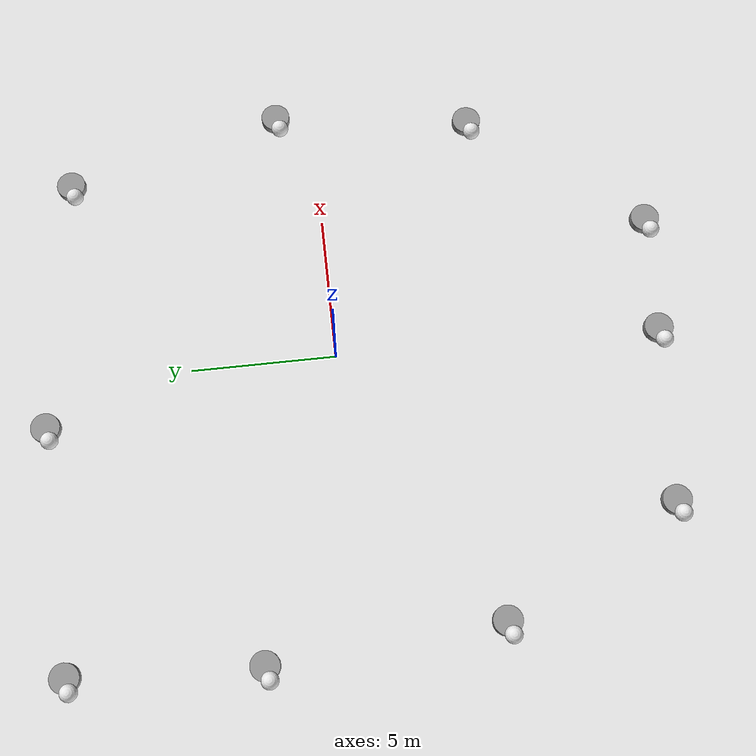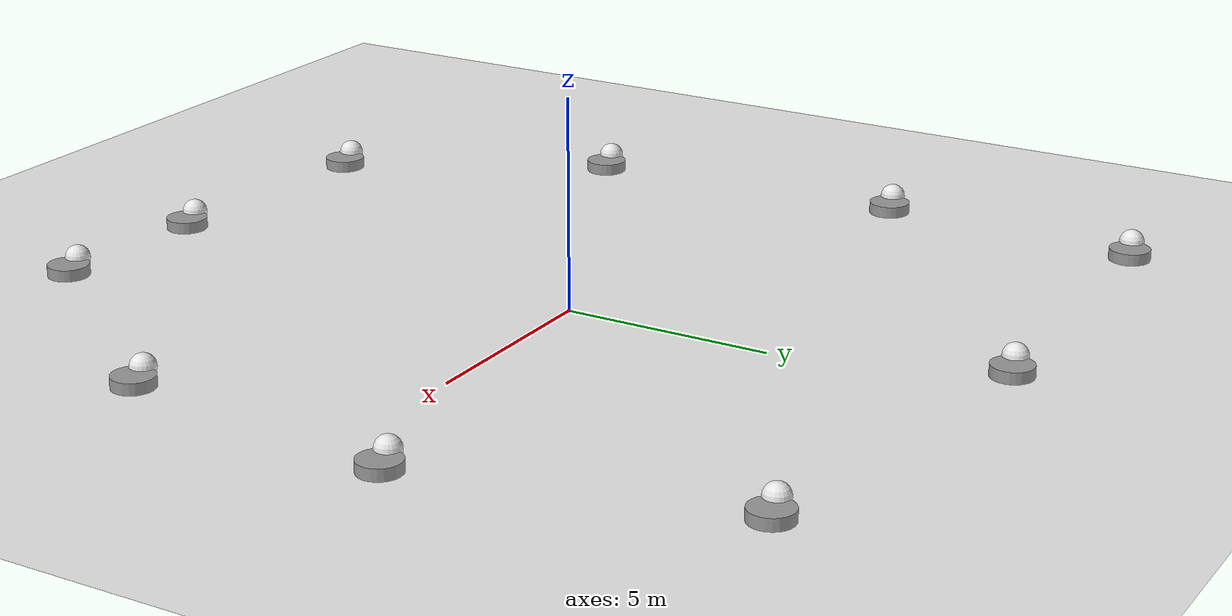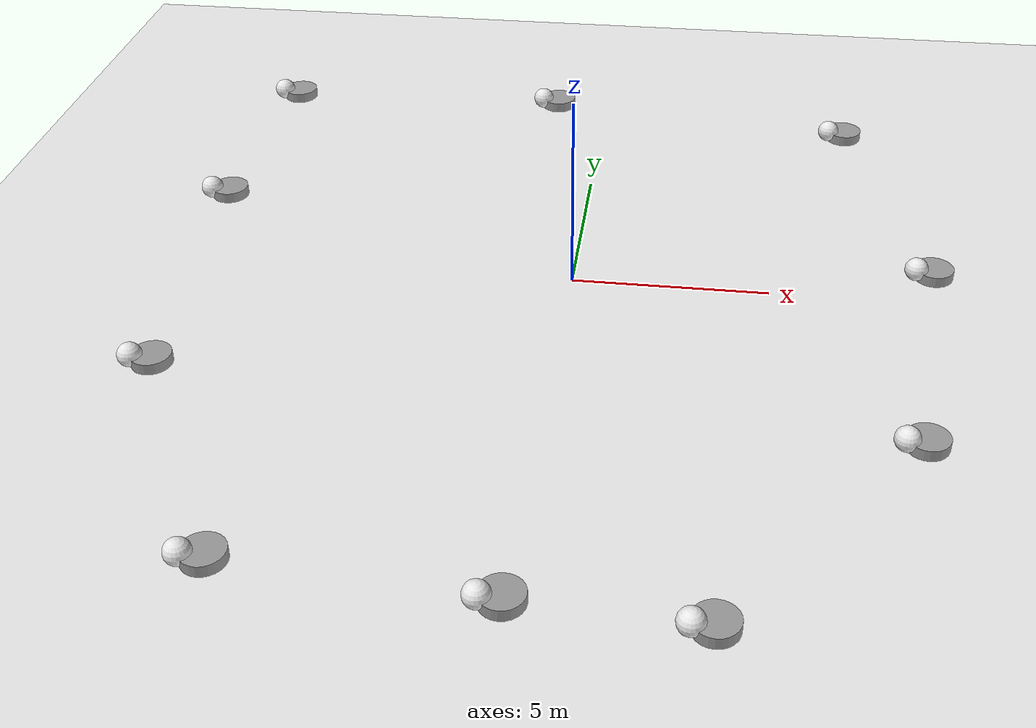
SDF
<sdf version="1.7">
 <world name="default">
  <light name="sun" type="directional">
   <pose>0 0 10 0 -0 0</pose>
   <diffuse>0.8 0.8 0.8 1</diffuse>
   <specular>0.2 0.2 0.2 1</specular>
   <attenuation>
    <range>1000</range>
    <constant>0.9</constant>
    <linear>0.01</linear>
    <quadratic>0.001</quadratic>
   </attenuation>
   <direction>-0.5 0.1 -0.9</direction>
   <spot><inner_angle>0</inner_angle><outer_angle>0</outer_angle><falloff>0</falloff></spot>
  </light>
  <model name="ground_plane">
   <static>1</static>
   <link name="link">
    <collision name="collision">
     <geometry><plane><normal>0 0 1</normal><size>100 100</size></plane></geometry>
     <surface>
      <contact><collide_bitmask>65535</collide_bitmask></contact>
      <friction><ode><mu>100</mu><mu2>50</mu2></ode></friction>
     </surface>
    </collision>
    <visual name="visual">
     <cast_shadows>0</cast_shadows>
     <geometry><plane><normal>0 0 1</normal><size>100 100</size></plane></geometry>
     <material>
      <script><uri>file://media/materials/scripts/gazebo.material</uri><name>Gazebo/White</name></script>
     </material>
    </visual>
   </link>
  </model>
  <gravity>0 0 -9.8</gravity>
  <magnetic_field>6e-06 2.3e-05 -4.2e-05</magnetic_field>
  <atmosphere type="adiabatic"/>
  <physics type="ode">
   <max_step_size>0.001</max_step_size>
   <real_time_factor>1</real_time_factor>
   <real_time_update_rate>1000</real_time_update_rate>
  </physics>
  <scene><ambient>0.4 0.4 0.4 1</ambient><background>0.7 0.7 0.7 1</background><shadows>1</shadows></scene>
  <spherical_coordinates>
   <surface_model>EARTH_WGS84</surface_model>
   <latitude_deg>0</latitude_deg>
   <longitude_deg>0</longitude_deg>
   <elevation>0</elevation>
   <heading_deg>0</heading_deg>
  </spherical_coordinates>
  <model name="model6.1">
   <link name="link_0">
    <inertial>
     <mass>1</mass>
     <inertia><ixx>0.145833</ixx><ixy>0</ixy><ixz>0</ixz><iyy>0.145833</iyy><iyz>0</iyz><izz>0.125</izz></inertia>
    </inertial>
    <pose>0.23341 0.06182 -0.25 0 -0 0</pose>
    <visual name="visual">
     <geometry><cylinder><radius>0.5</radius><length>1</length></cylinder></geometry>
     <material>
      <lighting>1</lighting>
      <script><uri>file://media/materials/scripts/gazebo.material</uri><name>Gazebo/Grey</name></script>
      <shader type="pixel"><normal_map>__default__</normal_map></shader>
      <emissive>0 0 0 1</emissive>
      <ambient>0.3 0.3 0.3 1</ambient>
      <diffuse>0.7 0.7 0.7 1</diffuse>
      <specular>0.01 0.01 0.01 1</specular>
     </material>
    </visual>
    <collision name="collision">
     <geometry><cylinder><radius>0.5</radius><length>1</length></cylinder></geometry>
     <surface>
      <friction>
       <ode><mu>1</mu><mu2>1</mu2><fdir1>0 0 0</fdir1><slip1>0</slip1><slip2>0</slip2></ode>
       <torsional>
        <coefficient>1</coefficient>
        <patch_radius>0</patch_radius>
        <surface_radius>0</surface_radius>
        <use_patch_radius>1</use_patch_radius>
        <ode><slip>0</slip></ode>
       </torsional>
      </friction>
      <bounce><restitution_coefficient>0</restitution_coefficient><threshold>1e+06</threshold></bounce>
      <contact>
       <collide_without_contact>0</collide_without_contact>
       <collide_without_contact_bitmask>1</collide_without_contact_bitmask>
       <collide_bitmask>1</collide_bitmask>
       <ode>
        <soft_cfm>0</soft_cfm>
        <soft_erp>0.2</soft_erp>
        <kp>1e+13</kp>
        <kd>1</kd>
        <max_vel>0.01</max_vel>
        <min_depth>0</min_depth>
       </ode>
       <bullet>
        <split_impulse>1</split_impulse>
        <split_impulse_penetration_threshold>-0.01</split_impulse_penetration_threshold>
        <soft_cfm>0</soft_cfm>
        <soft_erp>0.2</soft_erp>
        <kp>1e+13</kp>
        <kd>1</kd>
       </bullet>
      </contact>
     </surface>
    </collision>
   </link>
   <link name="link_1">
    <inertial>
     <mass>1</mass>
     <inertia><ixx>0.1</ixx><ixy>0</ixy><ixz>0</ixz><iyy>0.1</iyy><iyz>0</iyz><izz>0.1</izz></inertia>
    </inertial>
    <pose>-0.23341 -0.06182 0.25 0 -0 0</pose>
    <visual name="visual">
     <geometry><sphere><radius>0.3</radius></sphere></geometry>
     <material>
      <lighting>1</lighting>
      <script><uri>file://media/materials/scripts/gazebo.material</uri><name>Gazebo/White</name></script>
      <shader type="pixel"><normal_map>__default__</normal_map></shader>
      <ambient>0.3 0.3 0.3 1</ambient>
      <diffuse>0.7 0.7 0.7 1</diffuse>
      <specular>0.01 0.01 0.01 1</specular>
      <emissive>0 0 0 1</emissive>
     </material>
    </visual>
    <collision name="collision">
     <geometry><sphere><radius>0.3</radius></sphere></geometry>
     <surface>
      <friction>
       <ode><mu>1</mu><mu2>1</mu2><fdir1>0 0 0</fdir1><slip1>0</slip1><slip2>0</slip2></ode>
       <torsional>
        <coefficient>1</coefficient>
        <patch_radius>0</patch_radius>
        <surface_radius>0</surface_radius>
        <use_patch_radius>1</use_patch_radius>
        <ode><slip>0</slip></ode>
       </torsional>
      </friction>
      <bounce><restitution_coefficient>0</restitution_coefficient><threshold>1e+06</threshold></bounce>
      <contact>
       <collide_without_contact>0</collide_without_contact>
       <collide_without_contact_bitmask>1</collide_without_contact_bitmask>
       <collide_bitmask>1</collide_bitmask>
       <ode>
        <soft_cfm>0</soft_cfm>
        <soft_erp>0.2</soft_erp>
        <kp>1e+13</kp>
        <kd>1</kd>
        <max_vel>0.01</max_vel>
        <min_depth>0</min_depth>
       </ode>
       <bullet>
        <split_impulse>1</split_impulse>
        <split_impulse_penetration_threshold>-0.01</split_impulse_penetration_threshold>
        <soft_cfm>0</soft_cfm>
        <soft_erp>0.2</soft_erp>
        <kp>1e+13</kp>
        <kd>1</kd>
       </bullet>
      </contact>
     </surface>
    </collision>
   </link>
   <joint name="link_0_JOINT_0" type="revolute">
    <parent>link_0</parent>
    <child>link_1</child>
    <axis>
     <xyz>0 0 2</xyz>
     <limit>
      <lower>-1.79769e+308</lower>
      <upper>1.79769e+308</upper>
      <effort>-1</effort>
      <velocity>-1</velocity>
     </limit>
     <dynamics>
      <spring_reference>0</spring_reference>
      <spring_stiffness>0</spring_stiffness>
      <damping>0</damping>
     </dynamics>
    </axis>
    <physics>
     <ode><limit><cfm>0</cfm><erp>0.2</erp></limit><suspension><cfm>0</cfm><erp>0.2</erp></suspension></ode>
    </physics>
   </joint>
   <static>0</static>
   <pose>-10.0649 9.6678 0 0 -0 0</pose>
  </model>
  <model name="model6.1_0">
   <link name="link_0">
    <inertial>
     <mass>1</mass>
     <inertia><ixx>0.145833</ixx><ixy>0</ixy><ixz>0</ixz><iyy>0.145833</iyy><iyz>0</iyz><izz>0.125</izz></inertia>
    </inertial>
    <pose>0.23341 0.06182 -0.25 0 -0 0</pose>
    <visual name="visual">
     <geometry><cylinder><radius>0.5</radius><length>1</length></cylinder></geometry>
     <material>
      <lighting>1</lighting>
      <script><uri>file://media/materials/scripts/gazebo.material</uri><name>Gazebo/Grey</name></script>
      <shader type="pixel"><normal_map>__default__</normal_map></shader>
      <emissive>0 0 0 1</emissive>
      <ambient>0.3 0.3 0.3 1</ambient>
      <diffuse>0.7 0.7 0.7 1</diffuse>
      <specular>0.01 0.01 0.01 1</specular>
     </material>
    </visual>
    <collision name="collision">
     <geometry><cylinder><radius>0.5</radius><length>1</length></cylinder></geometry>
     <surface>
      <friction>
       <ode><mu>1</mu><mu2>1</mu2><fdir1>0 0 0</fdir1><slip1>0</slip1><slip2>0</slip2></ode>
       <torsional>
        <coefficient>1</coefficient>
        <patch_radius>0</patch_radius>
        <surface_radius>0</surface_radius>
        <use_patch_radius>1</use_patch_radius>
        <ode><slip>0</slip></ode>
       </torsional>
      </friction>
      <bounce><restitution_coefficient>0</restitution_coefficient><threshold>1e+06</threshold></bounce>
      <contact>
       <collide_without_contact>0</collide_without_contact>
       <collide_without_contact_bitmask>1</collide_without_contact_bitmask>
       <collide_bitmask>1</collide_bitmask>
       <ode>
        <soft_cfm>0</soft_cfm>
        <soft_erp>0.2</soft_erp>
        <kp>1e+13</kp>
        <kd>1</kd>
        <max_vel>0.01</max_vel>
        <min_depth>0</min_depth>
       </ode>
       <bullet>
        <split_impulse>1</split_impulse>
        <split_impulse_penetration_threshold>-0.01</split_impulse_penetration_threshold>
        <soft_cfm>0</soft_cfm>
        <soft_erp>0.2</soft_erp>
        <kp>1e+13</kp>
        <kd>1</kd>
       </bullet>
      </contact>
     </surface>
    </collision>
   </link>
   <link name="link_1">
    <inertial>
     <mass>1</mass>
     <inertia><ixx>0.1</ixx><ixy>0</ixy><ixz>0</ixz><iyy>0.1</iyy><iyz>0</iyz><izz>0.1</izz></inertia>
    </inertial>
    <pose>-0.23341 -0.06182 0.25 0 -0 0</pose>
    <visual name="visual">
     <geometry><sphere><radius>0.3</radius></sphere></geometry>
     <material>
      <lighting>1</lighting>
      <script><uri>file://media/materials/scripts/gazebo.material</uri><name>Gazebo/White</name></script>
      <shader type="pixel"><normal_map>__default__</normal_map></shader>
      <ambient>0.3 0.3 0.3 1</ambient>
      <diffuse>0.7 0.7 0.7 1</diffuse>
      <specular>0.01 0.01 0.01 1</specular>
      <emissive>0 0 0 1</emissive>
     </material>
    </visual>
    <collision name="collision">
     <geometry><sphere><radius>0.3</radius></sphere></geometry>
     <surface>
      <friction>
       <ode><mu>1</mu><mu2>1</mu2><fdir1>0 0 0</fdir1><slip1>0</slip1><slip2>0</slip2></ode>
       <torsional>
        <coefficient>1</coefficient>
        <patch_radius>0</patch_radius>
        <surface_radius>0</surface_radius>
        <use_patch_radius>1</use_patch_radius>
        <ode><slip>0</slip></ode>
       </torsional>
      </friction>
      <bounce><restitution_coefficient>0</restitution_coefficient><threshold>1e+06</threshold></bounce>
      <contact>
       <collide_without_contact>0</collide_without_contact>
       <collide_without_contact_bitmask>1</collide_without_contact_bitmask>
       <collide_bitmask>1</collide_bitmask>
       <ode>
        <soft_cfm>0</soft_cfm>
        <soft_erp>0.2</soft_erp>
        <kp>1e+13</kp>
        <kd>1</kd>
        <max_vel>0.01</max_vel>
        <min_depth>0</min_depth>
       </ode>
       <bullet>
        <split_impulse>1</split_impulse>
        <split_impulse_penetration_threshold>-0.01</split_impulse_penetration_threshold>
        <soft_cfm>0</soft_cfm>
        <soft_erp>0.2</soft_erp>
        <kp>1e+13</kp>
        <kd>1</kd>
       </bullet>
      </contact>
     </surface>
    </collision>
   </link>
   <joint name="link_0_JOINT_0" type="revolute">
    <parent>link_0</parent>
    <child>link_1</child>
    <axis>
     <xyz>0 0 2</xyz>
     <limit>
      <lower>-1.79769e+308</lower>
      <upper>1.79769e+308</upper>
      <effort>-1</effort>
      <velocity>-1</velocity>
     </limit>
     <dynamics>
      <spring_reference>0</spring_reference>
      <spring_stiffness>0</spring_stiffness>
      <damping>0</damping>
     </dynamics>
    </axis>
    <physics>
     <ode><limit><cfm>0</cfm><erp>0.2</erp></limit><suspension><cfm>0</cfm><erp>0.2</erp></suspension></ode>
    </physics>
   </joint>
   <static>0</static>
   <pose>-10.3536 3.24933 0 0 -0 0</pose>
  </model>
  <model name="model6.1_1">
   <link name="link_0">
    <inertial>
     <mass>1</mass>
     <inertia><ixx>0.145833</ixx><ixy>0</ixy><ixz>0</ixz><iyy>0.145833</iyy><iyz>0</iyz><izz>0.125</izz></inertia>
    </inertial>
    <pose>0.23341 0.06182 -0.25 0 -0 0</pose>
    <visual name="visual">
     <geometry><cylinder><radius>0.5</radius><length>1</length></cylinder></geometry>
     <material>
      <lighting>1</lighting>
      <script><uri>file://media/materials/scripts/gazebo.material</uri><name>Gazebo/Grey</name></script>
      <shader type="pixel"><normal_map>__default__</normal_map></shader>
      <emissive>0 0 0 1</emissive>
      <ambient>0.3 0.3 0.3 1</ambient>
      <diffuse>0.7 0.7 0.7 1</diffuse>
      <specular>0.01 0.01 0.01 1</specular>
     </material>
    </visual>
    <collision name="collision">
     <geometry><cylinder><radius>0.5</radius><length>1</length></cylinder></geometry>
     <surface>
      <friction>
       <ode><mu>1</mu><mu2>1</mu2><fdir1>0 0 0</fdir1><slip1>0</slip1><slip2>0</slip2></ode>
       <torsional>
        <coefficient>1</coefficient>
        <patch_radius>0</patch_radius>
        <surface_radius>0</surface_radius>
        <use_patch_radius>1</use_patch_radius>
        <ode><slip>0</slip></ode>
       </torsional>
      </friction>
      <bounce><restitution_coefficient>0</restitution_coefficient><threshold>1e+06</threshold></bounce>
      <contact>
       <collide_without_contact>0</collide_without_contact>
       <collide_without_contact_bitmask>1</collide_without_contact_bitmask>
       <collide_bitmask>1</collide_bitmask>
       <ode>
        <soft_cfm>0</soft_cfm>
        <soft_erp>0.2</soft_erp>
        <kp>1e+13</kp>
        <kd>1</kd>
        <max_vel>0.01</max_vel>
        <min_depth>0</min_depth>
       </ode>
       <bullet>
        <split_impulse>1</split_impulse>
        <split_impulse_penetration_threshold>-0.01</split_impulse_penetration_threshold>
        <soft_cfm>0</soft_cfm>
        <soft_erp>0.2</soft_erp>
        <kp>1e+13</kp>
        <kd>1</kd>
       </bullet>
      </contact>
     </surface>
    </collision>
   </link>
   <link name="link_1">
    <inertial>
     <mass>1</mass>
     <inertia><ixx>0.1</ixx><ixy>0</ixy><ixz>0</ixz><iyy>0.1</iyy><iyz>0</iyz><izz>0.1</izz></inertia>
    </inertial>
    <pose>-0.23341 -0.06182 0.25 0 -0 0</pose>
    <visual name="visual">
     <geometry><sphere><radius>0.3</radius></sphere></geometry>
     <material>
      <lighting>1</lighting>
      <script><uri>file://media/materials/scripts/gazebo.material</uri><name>Gazebo/White</name></script>
      <shader type="pixel"><normal_map>__default__</normal_map></shader>
      <ambient>0.3 0.3 0.3 1</ambient>
      <diffuse>0.7 0.7 0.7 1</diffuse>
      <specular>0.01 0.01 0.01 1</specular>
      <emissive>0 0 0 1</emissive>
     </material>
    </visual>
    <collision name="collision">
     <geometry><sphere><radius>0.3</radius></sphere></geometry>
     <surface>
      <friction>
       <ode><mu>1</mu><mu2>1</mu2><fdir1>0 0 0</fdir1><slip1>0</slip1><slip2>0</slip2></ode>
       <torsional>
        <coefficient>1</coefficient>
        <patch_radius>0</patch_radius>
        <surface_radius>0</surface_radius>
        <use_patch_radius>1</use_patch_radius>
        <ode><slip>0</slip></ode>
       </torsional>
      </friction>
      <bounce><restitution_coefficient>0</restitution_coefficient><threshold>1e+06</threshold></bounce>
      <contact>
       <collide_without_contact>0</collide_without_contact>
       <collide_without_contact_bitmask>1</collide_without_contact_bitmask>
       <collide_bitmask>1</collide_bitmask>
       <ode>
        <soft_cfm>0</soft_cfm>
        <soft_erp>0.2</soft_erp>
        <kp>1e+13</kp>
        <kd>1</kd>
        <max_vel>0.01</max_vel>
        <min_depth>0</min_depth>
       </ode>
       <bullet>
        <split_impulse>1</split_impulse>
        <split_impulse_penetration_threshold>-0.01</split_impulse_penetration_threshold>
        <soft_cfm>0</soft_cfm>
        <soft_erp>0.2</soft_erp>
        <kp>1e+13</kp>
        <kd>1</kd>
       </bullet>
      </contact>
     </surface>
    </collision>
   </link>
   <joint name="link_0_JOINT_0" type="revolute">
    <parent>link_0</parent>
    <child>link_1</child>
    <axis>
     <xyz>0 0 2</xyz>
     <limit>
      <lower>-1.79769e+308</lower>
      <upper>1.79769e+308</upper>
      <effort>-1</effort>
      <velocity>-1</velocity>
     </limit>
     <dynamics>
      <spring_reference>0</spring_reference>
      <spring_stiffness>0</spring_stiffness>
      <damping>0</damping>
     </dynamics>
    </axis>
    <physics>
     <ode><limit><cfm>0</cfm><erp>0.2</erp></limit><suspension><cfm>0</cfm><erp>0.2</erp></suspension></ode>
    </physics>
   </joint>
   <static>0</static>
   <pose>-9.74411 -4.69989 0 0 -0 0</pose>
  </model>
  <model name="model6.1_2">
   <link name="link_0">
    <inertial>
     <mass>1</mass>
     <inertia><ixx>0.145833</ixx><ixy>0</ixy><ixz>0</ixz><iyy>0.145833</iyy><iyz>0</iyz><izz>0.125</izz></inertia>
    </inertial>
    <pose>0.23341 0.06182 -0.25 0 -0 0</pose>
    <visual name="visual">
     <geometry><cylinder><radius>0.5</radius><length>1</length></cylinder></geometry>
     <material>
      <lighting>1</lighting>
      <script><uri>file://media/materials/scripts/gazebo.material</uri><name>Gazebo/Grey</name></script>
      <shader type="pixel"><normal_map>__default__</normal_map></shader>
      <emissive>0 0 0 1</emissive>
      <ambient>0.3 0.3 0.3 1</ambient>
      <diffuse>0.7 0.7 0.7 1</diffuse>
      <specular>0.01 0.01 0.01 1</specular>
     </material>
    </visual>
    <collision name="collision">
     <geometry><cylinder><radius>0.5</radius><length>1</length></cylinder></geometry>
     <surface>
      <friction>
       <ode><mu>1</mu><mu2>1</mu2><fdir1>0 0 0</fdir1><slip1>0</slip1><slip2>0</slip2></ode>
       <torsional>
        <coefficient>1</coefficient>
        <patch_radius>0</patch_radius>
        <surface_radius>0</surface_radius>
        <use_patch_radius>1</use_patch_radius>
        <ode><slip>0</slip></ode>
       </torsional>
      </friction>
      <bounce><restitution_coefficient>0</restitution_coefficient><threshold>1e+06</threshold></bounce>
      <contact>
       <collide_without_contact>0</collide_without_contact>
       <collide_without_contact_bitmask>1</collide_without_contact_bitmask>
       <collide_bitmask>1</collide_bitmask>
       <ode>
        <soft_cfm>0</soft_cfm>
        <soft_erp>0.2</soft_erp>
        <kp>1e+13</kp>
        <kd>1</kd>
        <max_vel>0.01</max_vel>
        <min_depth>0</min_depth>
       </ode>
       <bullet>
        <split_impulse>1</split_impulse>
        <split_impulse_penetration_threshold>-0.01</split_impulse_penetration_threshold>
        <soft_cfm>0</soft_cfm>
        <soft_erp>0.2</soft_erp>
        <kp>1e+13</kp>
        <kd>1</kd>
       </bullet>
      </contact>
     </surface>
    </collision>
   </link>
   <link name="link_1">
    <inertial>
     <mass>1</mass>
     <inertia><ixx>0.1</ixx><ixy>0</ixy><ixz>0</ixz><iyy>0.1</iyy><iyz>0</iyz><izz>0.1</izz></inertia>
    </inertial>
    <pose>-0.23341 -0.06182 0.25 0 -0 0</pose>
    <visual name="visual">
     <geometry><sphere><radius>0.3</radius></sphere></geometry>
     <material>
      <lighting>1</lighting>
      <script><uri>file://media/materials/scripts/gazebo.material</uri><name>Gazebo/White</name></script>
      <shader type="pixel"><normal_map>__default__</normal_map></shader>
      <ambient>0.3 0.3 0.3 1</ambient>
      <diffuse>0.7 0.7 0.7 1</diffuse>
      <specular>0.01 0.01 0.01 1</specular>
      <emissive>0 0 0 1</emissive>
     </material>
    </visual>
    <collision name="collision">
     <geometry><sphere><radius>0.3</radius></sphere></geometry>
     <surface>
      <friction>
       <ode><mu>1</mu><mu2>1</mu2><fdir1>0 0 0</fdir1><slip1>0</slip1><slip2>0</slip2></ode>
       <torsional>
        <coefficient>1</coefficient>
        <patch_radius>0</patch_radius>
        <surface_radius>0</surface_radius>
        <use_patch_radius>1</use_patch_radius>
        <ode><slip>0</slip></ode>
       </torsional>
      </friction>
      <bounce><restitution_coefficient>0</restitution_coefficient><threshold>1e+06</threshold></bounce>
      <contact>
       <collide_without_contact>0</collide_without_contact>
       <collide_without_contact_bitmask>1</collide_without_contact_bitmask>
       <collide_bitmask>1</collide_bitmask>
       <ode>
        <soft_cfm>0</soft_cfm>
        <soft_erp>0.2</soft_erp>
        <kp>1e+13</kp>
        <kd>1</kd>
        <max_vel>0.01</max_vel>
        <min_depth>0</min_depth>
       </ode>
       <bullet>
        <split_impulse>1</split_impulse>
        <split_impulse_penetration_threshold>-0.01</split_impulse_penetration_threshold>
        <soft_cfm>0</soft_cfm>
        <soft_erp>0.2</soft_erp>
        <kp>1e+13</kp>
        <kd>1</kd>
       </bullet>
      </contact>
     </surface>
    </collision>
   </link>
   <joint name="link_0_JOINT_0" type="revolute">
    <parent>link_0</parent>
    <child>link_1</child>
    <axis>
     <xyz>0 0 2</xyz>
     <limit>
      <lower>-1.79769e+308</lower>
      <upper>1.79769e+308</upper>
      <effort>-1</effort>
      <velocity>-1</velocity>
     </limit>
     <dynamics>
      <spring_reference>0</spring_reference>
      <spring_stiffness>0</spring_stiffness>
      <damping>0</damping>
     </dynamics>
    </axis>
    <physics>
     <ode><limit><cfm>0</cfm><erp>0.2</erp></limit><suspension><cfm>0</cfm><erp>0.2</erp></suspension></ode>
    </physics>
   </joint>
   <static>0</static>
   <pose>-6.40719 -10.8509 0 0 -0 0</pose>
  </model>
  <model name="model6.1_3">
   <link name="link_0">
    <inertial>
     <mass>1</mass>
     <inertia><ixx>0.145833</ixx><ixy>0</ixy><ixz>0</ixz><iyy>0.145833</iyy><iyz>0</iyz><izz>0.125</izz></inertia>
    </inertial>
    <pose>0.23341 0.06182 -0.25 0 -0 0</pose>
    <visual name="visual">
     <geometry><cylinder><radius>0.5</radius><length>1</length></cylinder></geometry>
     <material>
      <lighting>1</lighting>
      <script><uri>file://media/materials/scripts/gazebo.material</uri><name>Gazebo/Grey</name></script>
      <shader type="pixel"><normal_map>__default__</normal_map></shader>
      <emissive>0 0 0 1</emissive>
      <ambient>0.3 0.3 0.3 1</ambient>
      <diffuse>0.7 0.7 0.7 1</diffuse>
      <specular>0.01 0.01 0.01 1</specular>
     </material>
    </visual>
    <collision name="collision">
     <geometry><cylinder><radius>0.5</radius><length>1</length></cylinder></geometry>
     <surface>
      <friction>
       <ode><mu>1</mu><mu2>1</mu2><fdir1>0 0 0</fdir1><slip1>0</slip1><slip2>0</slip2></ode>
       <torsional>
        <coefficient>1</coefficient>
        <patch_radius>0</patch_radius>
        <surface_radius>0</surface_radius>
        <use_patch_radius>1</use_patch_radius>
        <ode><slip>0</slip></ode>
       </torsional>
      </friction>
      <bounce><restitution_coefficient>0</restitution_coefficient><threshold>1e+06</threshold></bounce>
      <contact>
       <collide_without_contact>0</collide_without_contact>
       <collide_without_contact_bitmask>1</collide_without_contact_bitmask>
       <collide_bitmask>1</collide_bitmask>
       <ode>
        <soft_cfm>0</soft_cfm>
        <soft_erp>0.2</soft_erp>
        <kp>1e+13</kp>
        <kd>1</kd>
        <max_vel>0.01</max_vel>
        <min_depth>0</min_depth>
       </ode>
       <bullet>
        <split_impulse>1</split_impulse>
        <split_impulse_penetration_threshold>-0.01</split_impulse_penetration_threshold>
        <soft_cfm>0</soft_cfm>
        <soft_erp>0.2</soft_erp>
        <kp>1e+13</kp>
        <kd>1</kd>
       </bullet>
      </contact>
     </surface>
    </collision>
   </link>
   <link name="link_1">
    <inertial>
     <mass>1</mass>
     <inertia><ixx>0.1</ixx><ixy>0</ixy><ixz>0</ixz><iyy>0.1</iyy><iyz>0</iyz><izz>0.1</izz></inertia>
    </inertial>
    <pose>-0.23341 -0.06182 0.25 0 -0 0</pose>
    <visual name="visual">
     <geometry><sphere><radius>0.3</radius></sphere></geometry>
     <material>
      <lighting>1</lighting>
      <script><uri>file://media/materials/scripts/gazebo.material</uri><name>Gazebo/White</name></script>
      <shader type="pixel"><normal_map>__default__</normal_map></shader>
      <ambient>0.3 0.3 0.3 1</ambient>
      <diffuse>0.7 0.7 0.7 1</diffuse>
      <specular>0.01 0.01 0.01 1</specular>
      <emissive>0 0 0 1</emissive>
     </material>
    </visual>
    <collision name="collision">
     <geometry><sphere><radius>0.3</radius></sphere></geometry>
     <surface>
      <friction>
       <ode><mu>1</mu><mu2>1</mu2><fdir1>0 0 0</fdir1><slip1>0</slip1><slip2>0</slip2></ode>
       <torsional>
        <coefficient>1</coefficient>
        <patch_radius>0</patch_radius>
        <surface_radius>0</surface_radius>
        <use_patch_radius>1</use_patch_radius>
        <ode><slip>0</slip></ode>
       </torsional>
      </friction>
      <bounce><restitution_coefficient>0</restitution_coefficient><threshold>1e+06</threshold></bounce>
      <contact>
       <collide_without_contact>0</collide_without_contact>
       <collide_without_contact_bitmask>1</collide_without_contact_bitmask>
       <collide_bitmask>1</collide_bitmask>
       <ode>
        <soft_cfm>0</soft_cfm>
        <soft_erp>0.2</soft_erp>
        <kp>1e+13</kp>
        <kd>1</kd>
        <max_vel>0.01</max_vel>
        <min_depth>0</min_depth>
       </ode>
       <bullet>
        <split_impulse>1</split_impulse>
        <split_impulse_penetration_threshold>-0.01</split_impulse_penetration_threshold>
        <soft_cfm>0</soft_cfm>
        <soft_erp>0.2</soft_erp>
        <kp>1e+13</kp>
        <kd>1</kd>
       </bullet>
      </contact>
     </surface>
    </collision>
   </link>
   <joint name="link_0_JOINT_0" type="revolute">
    <parent>link_0</parent>
    <child>link_1</child>
    <axis>
     <xyz>0 0 2</xyz>
     <limit>
      <lower>-1.79769e+308</lower>
      <upper>1.79769e+308</upper>
      <effort>-1</effort>
      <velocity>-1</velocity>
     </limit>
     <dynamics>
      <spring_reference>0</spring_reference>
      <spring_stiffness>0</spring_stiffness>
      <damping>0</damping>
     </dynamics>
    </axis>
    <physics>
     <ode><limit><cfm>0</cfm><erp>0.2</erp></limit><suspension><cfm>0</cfm><erp>0.2</erp></suspension></ode>
    </physics>
   </joint>
   <static>0</static>
   <pose>-0.378354 -11.2786 0 0 -0 0</pose>
  </model>
  <model name="model6.1_4">
   <link name="link_0">
    <inertial>
     <mass>1</mass>
     <inertia><ixx>0.145833</ixx><ixy>0</ixy><ixz>0</ixz><iyy>0.145833</iyy><iyz>0</iyz><izz>0.125</izz></inertia>
    </inertial>
    <pose>0.23341 0.06182 -0.25 0 -0 0</pose>
    <visual name="visual">
     <geometry><cylinder><radius>0.5</radius><length>1</length></cylinder></geometry>
     <material>
      <lighting>1</lighting>
      <script><uri>file://media/materials/scripts/gazebo.material</uri><name>Gazebo/Grey</name></script>
      <shader type="pixel"><normal_map>__default__</normal_map></shader>
      <emissive>0 0 0 1</emissive>
      <ambient>0.3 0.3 0.3 1</ambient>
      <diffuse>0.7 0.7 0.7 1</diffuse>
      <specular>0.01 0.01 0.01 1</specular>
     </material>
    </visual>
    <collision name="collision">
     <geometry><cylinder><radius>0.5</radius><length>1</length></cylinder></geometry>
     <surface>
      <friction>
       <ode><mu>1</mu><mu2>1</mu2><fdir1>0 0 0</fdir1><slip1>0</slip1><slip2>0</slip2></ode>
       <torsional>
        <coefficient>1</coefficient>
        <patch_radius>0</patch_radius>
        <surface_radius>0</surface_radius>
        <use_patch_radius>1</use_patch_radius>
        <ode><slip>0</slip></ode>
       </torsional>
      </friction>
      <bounce><restitution_coefficient>0</restitution_coefficient><threshold>1e+06</threshold></bounce>
      <contact>
       <collide_without_contact>0</collide_without_contact>
       <collide_without_contact_bitmask>1</collide_without_contact_bitmask>
       <collide_bitmask>1</collide_bitmask>
       <ode>
        <soft_cfm>0</soft_cfm>
        <soft_erp>0.2</soft_erp>
        <kp>1e+13</kp>
        <kd>1</kd>
        <max_vel>0.01</max_vel>
        <min_depth>0</min_depth>
       </ode>
       <bullet>
        <split_impulse>1</split_impulse>
        <split_impulse_penetration_threshold>-0.01</split_impulse_penetration_threshold>
        <soft_cfm>0</soft_cfm>
        <soft_erp>0.2</soft_erp>
        <kp>1e+13</kp>
        <kd>1</kd>
       </bullet>
      </contact>
     </surface>
    </collision>
   </link>
   <link name="link_1">
    <inertial>
     <mass>1</mass>
     <inertia><ixx>0.1</ixx><ixy>0</ixy><ixz>0</ixz><iyy>0.1</iyy><iyz>0</iyz><izz>0.1</izz></inertia>
    </inertial>
    <pose>-0.23341 -0.06182 0.25 0 -0 0</pose>
    <visual name="visual">
     <geometry><sphere><radius>0.3</radius></sphere></geometry>
     <material>
      <lighting>1</lighting>
      <script><uri>file://media/materials/scripts/gazebo.material</uri><name>Gazebo/White</name></script>
      <shader type="pixel"><normal_map>__default__</normal_map></shader>
      <ambient>0.3 0.3 0.3 1</ambient>
      <diffuse>0.7 0.7 0.7 1</diffuse>
      <specular>0.01 0.01 0.01 1</specular>
      <emissive>0 0 0 1</emissive>
     </material>
    </visual>
    <collision name="collision">
     <geometry><sphere><radius>0.3</radius></sphere></geometry>
     <surface>
      <friction>
       <ode><mu>1</mu><mu2>1</mu2><fdir1>0 0 0</fdir1><slip1>0</slip1><slip2>0</slip2></ode>
       <torsional>
        <coefficient>1</coefficient>
        <patch_radius>0</patch_radius>
        <surface_radius>0</surface_radius>
        <use_patch_radius>1</use_patch_radius>
        <ode><slip>0</slip></ode>
       </torsional>
      </friction>
      <bounce><restitution_coefficient>0</restitution_coefficient><threshold>1e+06</threshold></bounce>
      <contact>
       <collide_without_contact>0</collide_without_contact>
       <collide_without_contact_bitmask>1</collide_without_contact_bitmask>
       <collide_bitmask>1</collide_bitmask>
       <ode>
        <soft_cfm>0</soft_cfm>
        <soft_erp>0.2</soft_erp>
        <kp>1e+13</kp>
        <kd>1</kd>
        <max_vel>0.01</max_vel>
        <min_depth>0</min_depth>
       </ode>
       <bullet>
        <split_impulse>1</split_impulse>
        <split_impulse_penetration_threshold>-0.01</split_impulse_penetration_threshold>
        <soft_cfm>0</soft_cfm>
        <soft_erp>0.2</soft_erp>
        <kp>1e+13</kp>
        <kd>1</kd>
       </bullet>
      </contact>
     </surface>
    </collision>
   </link>
   <joint name="link_0_JOINT_0" type="revolute">
    <parent>link_0</parent>
    <child>link_1</child>
    <axis>
     <xyz>0 0 2</xyz>
     <limit>
      <lower>-1.79769e+308</lower>
      <upper>1.79769e+308</upper>
      <effort>-1</effort>
      <velocity>-1</velocity>
     </limit>
     <dynamics>
      <spring_reference>0</spring_reference>
      <spring_stiffness>0</spring_stiffness>
      <damping>0</damping>
     </dynamics>
    </axis>
    <physics>
     <ode><limit><cfm>0</cfm><erp>0.2</erp></limit><suspension><cfm>0</cfm><erp>0.2</erp></suspension></ode>
    </physics>
   </joint>
   <static>0</static>
   <pose>3.70042 -11.4788 0 0 -0 0</pose>
  </model>
  <model name="model6.1_5">
   <link name="link_0">
    <inertial>
     <mass>1</mass>
     <inertia><ixx>0.145833</ixx><ixy>0</ixy><ixz>0</ixz><iyy>0.145833</iyy><iyz>0</iyz><izz>0.125</izz></inertia>
    </inertial>
    <pose>0.23341 0.06182 -0.25 0 -0 0</pose>
    <visual name="visual">
     <geometry><cylinder><radius>0.5</radius><length>1</length></cylinder></geometry>
     <material>
      <lighting>1</lighting>
      <script><uri>file://media/materials/scripts/gazebo.material</uri><name>Gazebo/Grey</name></script>
      <shader type="pixel"><normal_map>__default__</normal_map></shader>
      <emissive>0 0 0 1</emissive>
      <ambient>0.3 0.3 0.3 1</ambient>
      <diffuse>0.7 0.7 0.7 1</diffuse>
      <specular>0.01 0.01 0.01 1</specular>
     </material>
    </visual>
    <collision name="collision">
     <geometry><cylinder><radius>0.5</radius><length>1</length></cylinder></geometry>
     <surface>
      <friction>
       <ode><mu>1</mu><mu2>1</mu2><fdir1>0 0 0</fdir1><slip1>0</slip1><slip2>0</slip2></ode>
       <torsional>
        <coefficient>1</coefficient>
        <patch_radius>0</patch_radius>
        <surface_radius>0</surface_radius>
        <use_patch_radius>1</use_patch_radius>
        <ode><slip>0</slip></ode>
       </torsional>
      </friction>
      <bounce><restitution_coefficient>0</restitution_coefficient><threshold>1e+06</threshold></bounce>
      <contact>
       <collide_without_contact>0</collide_without_contact>
       <collide_without_contact_bitmask>1</collide_without_contact_bitmask>
       <collide_bitmask>1</collide_bitmask>
       <ode>
        <soft_cfm>0</soft_cfm>
        <soft_erp>0.2</soft_erp>
        <kp>1e+13</kp>
        <kd>1</kd>
        <max_vel>0.01</max_vel>
        <min_depth>0</min_depth>
       </ode>
       <bullet>
        <split_impulse>1</split_impulse>
        <split_impulse_penetration_threshold>-0.01</split_impulse_penetration_threshold>
        <soft_cfm>0</soft_cfm>
        <soft_erp>0.2</soft_erp>
        <kp>1e+13</kp>
        <kd>1</kd>
       </bullet>
      </contact>
     </surface>
    </collision>
   </link>
   <link name="link_1">
    <inertial>
     <mass>1</mass>
     <inertia><ixx>0.1</ixx><ixy>0</ixy><ixz>0</ixz><iyy>0.1</iyy><iyz>0</iyz><izz>0.1</izz></inertia>
    </inertial>
    <pose>-0.23341 -0.06182 0.25 0 -0 0</pose>
    <visual name="visual">
     <geometry><sphere><radius>0.3</radius></sphere></geometry>
     <material>
      <lighting>1</lighting>
      <script><uri>file://media/materials/scripts/gazebo.material</uri><name>Gazebo/White</name></script>
      <shader type="pixel"><normal_map>__default__</normal_map></shader>
      <ambient>0.3 0.3 0.3 1</ambient>
      <diffuse>0.7 0.7 0.7 1</diffuse>
      <specular>0.01 0.01 0.01 1</specular>
      <emissive>0 0 0 1</emissive>
     </material>
    </visual>
    <collision name="collision">
     <geometry><sphere><radius>0.3</radius></sphere></geometry>
     <surface>
      <friction>
       <ode><mu>1</mu><mu2>1</mu2><fdir1>0 0 0</fdir1><slip1>0</slip1><slip2>0</slip2></ode>
       <torsional>
        <coefficient>1</coefficient>
        <patch_radius>0</patch_radius>
        <surface_radius>0</surface_radius>
        <use_patch_radius>1</use_patch_radius>
        <ode><slip>0</slip></ode>
       </torsional>
      </friction>
      <bounce><restitution_coefficient>0</restitution_coefficient><threshold>1e+06</threshold></bounce>
      <contact>
       <collide_without_contact>0</collide_without_contact>
       <collide_without_contact_bitmask>1</collide_without_contact_bitmask>
       <collide_bitmask>1</collide_bitmask>
       <ode>
        <soft_cfm>0</soft_cfm>
        <soft_erp>0.2</soft_erp>
        <kp>1e+13</kp>
        <kd>1</kd>
        <max_vel>0.01</max_vel>
        <min_depth>0</min_depth>
       </ode>
       <bullet>
        <split_impulse>1</split_impulse>
        <split_impulse_penetration_threshold>-0.01</split_impulse_penetration_threshold>
        <soft_cfm>0</soft_cfm>
        <soft_erp>0.2</soft_erp>
        <kp>1e+13</kp>
        <kd>1</kd>
       </bullet>
      </contact>
     </surface>
    </collision>
   </link>
   <joint name="link_0_JOINT_0" type="revolute">
    <parent>link_0</parent>
    <child>link_1</child>
    <axis>
     <xyz>0 0 2</xyz>
     <limit>
      <lower>-1.79769e+308</lower>
      <upper>1.79769e+308</upper>
      <effort>-1</effort>
      <velocity>-1</velocity>
     </limit>
     <dynamics>
      <spring_reference>0</spring_reference>
      <spring_stiffness>0</spring_stiffness>
      <damping>0</damping>
     </dynamics>
    </axis>
    <physics>
     <ode><limit><cfm>0</cfm><erp>0.2</erp></limit><suspension><cfm>0</cfm><erp>0.2</erp></suspension></ode>
    </physics>
   </joint>
   <static>0</static>
   <pose>8.16747 -5.65709 0 0 -0 0</pose>
  </model>
  <model name="model6.1_6">
   <link name="link_0">
    <inertial>
     <mass>1</mass>
     <inertia><ixx>0.145833</ixx><ixy>0</ixy><ixz>0</ixz><iyy>0.145833</iyy><iyz>0</iyz><izz>0.125</izz></inertia>
    </inertial>
    <pose>0.23341 0.06182 -0.25 0 -0 0</pose>
    <visual name="visual">
     <geometry><cylinder><radius>0.5</radius><length>1</length></cylinder></geometry>
     <material>
      <lighting>1</lighting>
      <script><uri>file://media/materials/scripts/gazebo.material</uri><name>Gazebo/Grey</name></script>
      <shader type="pixel"><normal_map>__default__</normal_map></shader>
      <emissive>0 0 0 1</emissive>
      <ambient>0.3 0.3 0.3 1</ambient>
      <diffuse>0.7 0.7 0.7 1</diffuse>
      <specular>0.01 0.01 0.01 1</specular>
     </material>
    </visual>
    <collision name="collision">
     <geometry><cylinder><radius>0.5</radius><length>1</length></cylinder></geometry>
     <surface>
      <friction>
       <ode><mu>1</mu><mu2>1</mu2><fdir1>0 0 0</fdir1><slip1>0</slip1><slip2>0</slip2></ode>
       <torsional>
        <coefficient>1</coefficient>
        <patch_radius>0</patch_radius>
        <surface_radius>0</surface_radius>
        <use_patch_radius>1</use_patch_radius>
        <ode><slip>0</slip></ode>
       </torsional>
      </friction>
      <bounce><restitution_coefficient>0</restitution_coefficient><threshold>1e+06</threshold></bounce>
      <contact>
       <collide_without_contact>0</collide_without_contact>
       <collide_without_contact_bitmask>1</collide_without_contact_bitmask>
       <collide_bitmask>1</collide_bitmask>
       <ode>
        <soft_cfm>0</soft_cfm>
        <soft_erp>0.2</soft_erp>
        <kp>1e+13</kp>
        <kd>1</kd>
        <max_vel>0.01</max_vel>
        <min_depth>0</min_depth>
       </ode>
       <bullet>
        <split_impulse>1</split_impulse>
        <split_impulse_penetration_threshold>-0.01</split_impulse_penetration_threshold>
        <soft_cfm>0</soft_cfm>
        <soft_erp>0.2</soft_erp>
        <kp>1e+13</kp>
        <kd>1</kd>
       </bullet>
      </contact>
     </surface>
    </collision>
   </link>
   <link name="link_1">
    <inertial>
     <mass>1</mass>
     <inertia><ixx>0.1</ixx><ixy>0</ixy><ixz>0</ixz><iyy>0.1</iyy><iyz>0</iyz><izz>0.1</izz></inertia>
    </inertial>
    <pose>-0.23341 -0.06182 0.25 0 -0 0</pose>
    <visual name="visual">
     <geometry><sphere><radius>0.3</radius></sphere></geometry>
     <material>
      <lighting>1</lighting>
      <script><uri>file://media/materials/scripts/gazebo.material</uri><name>Gazebo/White</name></script>
      <shader type="pixel"><normal_map>__default__</normal_map></shader>
      <ambient>0.3 0.3 0.3 1</ambient>
      <diffuse>0.7 0.7 0.7 1</diffuse>
      <specular>0.01 0.01 0.01 1</specular>
      <emissive>0 0 0 1</emissive>
     </material>
    </visual>
    <collision name="collision">
     <geometry><sphere><radius>0.3</radius></sphere></geometry>
     <surface>
      <friction>
       <ode><mu>1</mu><mu2>1</mu2><fdir1>0 0 0</fdir1><slip1>0</slip1><slip2>0</slip2></ode>
       <torsional>
        <coefficient>1</coefficient>
        <patch_radius>0</patch_radius>
        <surface_radius>0</surface_radius>
        <use_patch_radius>1</use_patch_radius>
        <ode><slip>0</slip></ode>
       </torsional>
      </friction>
      <bounce><restitution_coefficient>0</restitution_coefficient><threshold>1e+06</threshold></bounce>
      <contact>
       <collide_without_contact>0</collide_without_contact>
       <collide_without_contact_bitmask>1</collide_without_contact_bitmask>
       <collide_bitmask>1</collide_bitmask>
       <ode>
        <soft_cfm>0</soft_cfm>
        <soft_erp>0.2</soft_erp>
        <kp>1e+13</kp>
        <kd>1</kd>
        <max_vel>0.01</max_vel>
        <min_depth>0</min_depth>
       </ode>
       <bullet>
        <split_impulse>1</split_impulse>
        <split_impulse_penetration_threshold>-0.01</split_impulse_penetration_threshold>
        <soft_cfm>0</soft_cfm>
        <soft_erp>0.2</soft_erp>
        <kp>1e+13</kp>
        <kd>1</kd>
       </bullet>
      </contact>
     </surface>
    </collision>
   </link>
   <joint name="link_0_JOINT_0" type="revolute">
    <parent>link_0</parent>
    <child>link_1</child>
    <axis>
     <xyz>0 0 2</xyz>
     <limit>
      <lower>-1.79769e+308</lower>
      <upper>1.79769e+308</upper>
      <effort>-1</effort>
      <velocity>-1</velocity>
     </limit>
     <dynamics>
      <spring_reference>0</spring_reference>
      <spring_stiffness>0</spring_stiffness>
      <damping>0</damping>
     </dynamics>
    </axis>
    <physics>
     <ode><limit><cfm>0</cfm><erp>0.2</erp></limit><suspension><cfm>0</cfm><erp>0.2</erp></suspension></ode>
    </physics>
   </joint>
   <static>0</static>
   <pose>8.99567 1.24455 0 0 -0 0</pose>
  </model>
  <model name="model6.1_7">
   <link name="link_0">
    <inertial>
     <mass>1</mass>
     <inertia><ixx>0.145833</ixx><ixy>0</ixy><ixz>0</ixz><iyy>0.145833</iyy><iyz>0</iyz><izz>0.125</izz></inertia>
    </inertial>
    <pose>0.23341 0.06182 -0.25 0 -0 0</pose>
    <visual name="visual">
     <geometry><cylinder><radius>0.5</radius><length>1</length></cylinder></geometry>
     <material>
      <lighting>1</lighting>
      <script><uri>file://media/materials/scripts/gazebo.material</uri><name>Gazebo/Grey</name></script>
      <shader type="pixel"><normal_map>__default__</normal_map></shader>
      <emissive>0 0 0 1</emissive>
      <ambient>0.3 0.3 0.3 1</ambient>
      <diffuse>0.7 0.7 0.7 1</diffuse>
      <specular>0.01 0.01 0.01 1</specular>
     </material>
    </visual>
    <collision name="collision">
     <geometry><cylinder><radius>0.5</radius><length>1</length></cylinder></geometry>
     <surface>
      <friction>
       <ode><mu>1</mu><mu2>1</mu2><fdir1>0 0 0</fdir1><slip1>0</slip1><slip2>0</slip2></ode>
       <torsional>
        <coefficient>1</coefficient>
        <patch_radius>0</patch_radius>
        <surface_radius>0</surface_radius>
        <use_patch_radius>1</use_patch_radius>
        <ode><slip>0</slip></ode>
       </torsional>
      </friction>
      <bounce><restitution_coefficient>0</restitution_coefficient><threshold>1e+06</threshold></bounce>
      <contact>
       <collide_without_contact>0</collide_without_contact>
       <collide_without_contact_bitmask>1</collide_without_contact_bitmask>
       <collide_bitmask>1</collide_bitmask>
       <ode>
        <soft_cfm>0</soft_cfm>
        <soft_erp>0.2</soft_erp>
        <kp>1e+13</kp>
        <kd>1</kd>
        <max_vel>0.01</max_vel>
        <min_depth>0</min_depth>
       </ode>
       <bullet>
        <split_impulse>1</split_impulse>
        <split_impulse_penetration_threshold>-0.01</split_impulse_penetration_threshold>
        <soft_cfm>0</soft_cfm>
        <soft_erp>0.2</soft_erp>
        <kp>1e+13</kp>
        <kd>1</kd>
       </bullet>
      </contact>
     </surface>
    </collision>
   </link>
   <link name="link_1">
    <inertial>
     <mass>1</mass>
     <inertia><ixx>0.1</ixx><ixy>0</ixy><ixz>0</ixz><iyy>0.1</iyy><iyz>0</iyz><izz>0.1</izz></inertia>
    </inertial>
    <pose>-0.23341 -0.06182 0.25 0 -0 0</pose>
    <visual name="visual">
     <geometry><sphere><radius>0.3</radius></sphere></geometry>
     <material>
      <lighting>1</lighting>
      <script><uri>file://media/materials/scripts/gazebo.material</uri><name>Gazebo/White</name></script>
      <shader type="pixel"><normal_map>__default__</normal_map></shader>
      <ambient>0.3 0.3 0.3 1</ambient>
      <diffuse>0.7 0.7 0.7 1</diffuse>
      <specular>0.01 0.01 0.01 1</specular>
      <emissive>0 0 0 1</emissive>
     </material>
    </visual>
    <collision name="collision">
     <geometry><sphere><radius>0.3</radius></sphere></geometry>
     <surface>
      <friction>
       <ode><mu>1</mu><mu2>1</mu2><fdir1>0 0 0</fdir1><slip1>0</slip1><slip2>0</slip2></ode>
       <torsional>
        <coefficient>1</coefficient>
        <patch_radius>0</patch_radius>
        <surface_radius>0</surface_radius>
        <use_patch_radius>1</use_patch_radius>
        <ode><slip>0</slip></ode>
       </torsional>
      </friction>
      <bounce><restitution_coefficient>0</restitution_coefficient><threshold>1e+06</threshold></bounce>
      <contact>
       <collide_without_contact>0</collide_without_contact>
       <collide_without_contact_bitmask>1</collide_without_contact_bitmask>
       <collide_bitmask>1</collide_bitmask>
       <ode>
        <soft_cfm>0</soft_cfm>
        <soft_erp>0.2</soft_erp>
        <kp>1e+13</kp>
        <kd>1</kd>
        <max_vel>0.01</max_vel>
        <min_depth>0</min_depth>
       </ode>
       <bullet>
        <split_impulse>1</split_impulse>
        <split_impulse_penetration_threshold>-0.01</split_impulse_penetration_threshold>
        <soft_cfm>0</soft_cfm>
        <soft_erp>0.2</soft_erp>
        <kp>1e+13</kp>
        <kd>1</kd>
       </bullet>
      </contact>
     </surface>
    </collision>
   </link>
   <joint name="link_0_JOINT_0" type="revolute">
    <parent>link_0</parent>
    <child>link_1</child>
    <axis>
     <xyz>0 0 2</xyz>
     <limit>
      <lower>-1.79769e+308</lower>
      <upper>1.79769e+308</upper>
      <effort>-1</effort>
      <velocity>-1</velocity>
     </limit>
     <dynamics>
      <spring_reference>0</spring_reference>
      <spring_stiffness>0</spring_stiffness>
      <damping>0</damping>
     </dynamics>
    </axis>
    <physics>
     <ode><limit><cfm>0</cfm><erp>0.2</erp></limit><suspension><cfm>0</cfm><erp>0.2</erp></suspension></ode>
    </physics>
   </joint>
   <static>0</static>
   <pose>7.06932 8.75751 0 0 -0 0</pose>
  </model>
  <model name="model6.1_8">
   <link name="link_0">
    <inertial>
     <mass>1</mass>
     <inertia><ixx>0.145833</ixx><ixy>0</ixy><ixz>0</ixz><iyy>0.145833</iyy><iyz>0</iyz><izz>0.125</izz></inertia>
    </inertial>
    <pose>0.23341 0.06182 -0.25 0 -0 0</pose>
    <visual name="visual">
     <geometry><cylinder><radius>0.5</radius><length>1</length></cylinder></geometry>
     <material>
      <lighting>1</lighting>
      <script><uri>file://media/materials/scripts/gazebo.material</uri><name>Gazebo/Grey</name></script>
      <shader type="pixel"><normal_map>__default__</normal_map></shader>
      <emissive>0 0 0 1</emissive>
      <ambient>0.3 0.3 0.3 1</ambient>
      <diffuse>0.7 0.7 0.7 1</diffuse>
      <specular>0.01 0.01 0.01 1</specular>
     </material>
    </visual>
    <collision name="collision">
     <geometry><cylinder><radius>0.5</radius><length>1</length></cylinder></geometry>
     <surface>
      <friction>
       <ode><mu>1</mu><mu2>1</mu2><fdir1>0 0 0</fdir1><slip1>0</slip1><slip2>0</slip2></ode>
       <torsional>
        <coefficient>1</coefficient>
        <patch_radius>0</patch_radius>
        <surface_radius>0</surface_radius>
        <use_patch_radius>1</use_patch_radius>
        <ode><slip>0</slip></ode>
       </torsional>
      </friction>
      <bounce><restitution_coefficient>0</restitution_coefficient><threshold>1e+06</threshold></bounce>
      <contact>
       <collide_without_contact>0</collide_without_contact>
       <collide_without_contact_bitmask>1</collide_without_contact_bitmask>
       <collide_bitmask>1</collide_bitmask>
       <ode>
        <soft_cfm>0</soft_cfm>
        <soft_erp>0.2</soft_erp>
        <kp>1e+13</kp>
        <kd>1</kd>
        <max_vel>0.01</max_vel>
        <min_depth>0</min_depth>
       </ode>
       <bullet>
        <split_impulse>1</split_impulse>
        <split_impulse_penetration_threshold>-0.01</split_impulse_penetration_threshold>
        <soft_cfm>0</soft_cfm>
        <soft_erp>0.2</soft_erp>
        <kp>1e+13</kp>
        <kd>1</kd>
       </bullet>
      </contact>
     </surface>
    </collision>
   </link>
   <link name="link_1">
    <inertial>
     <mass>1</mass>
     <inertia><ixx>0.1</ixx><ixy>0</ixy><ixz>0</ixz><iyy>0.1</iyy><iyz>0</iyz><izz>0.1</izz></inertia>
    </inertial>
    <pose>-0.23341 -0.06182 0.25 0 -0 0</pose>
    <visual name="visual">
     <geometry><sphere><radius>0.3</radius></sphere></geometry>
     <material>
      <lighting>1</lighting>
      <script><uri>file://media/materials/scripts/gazebo.material</uri><name>Gazebo/White</name></script>
      <shader type="pixel"><normal_map>__default__</normal_map></shader>
      <ambient>0.3 0.3 0.3 1</ambient>
      <diffuse>0.7 0.7 0.7 1</diffuse>
      <specular>0.01 0.01 0.01 1</specular>
      <emissive>0 0 0 1</emissive>
     </material>
    </visual>
    <collision name="collision">
     <geometry><sphere><radius>0.3</radius></sphere></geometry>
     <surface>
      <friction>
       <ode><mu>1</mu><mu2>1</mu2><fdir1>0 0 0</fdir1><slip1>0</slip1><slip2>0</slip2></ode>
       <torsional>
        <coefficient>1</coefficient>
        <patch_radius>0</patch_radius>
        <surface_radius>0</surface_radius>
        <use_patch_radius>1</use_patch_radius>
        <ode><slip>0</slip></ode>
       </torsional>
      </friction>
      <bounce><restitution_coefficient>0</restitution_coefficient><threshold>1e+06</threshold></bounce>
      <contact>
       <collide_without_contact>0</collide_without_contact>
       <collide_without_contact_bitmask>1</collide_without_contact_bitmask>
       <collide_bitmask>1</collide_bitmask>
       <ode>
        <soft_cfm>0</soft_cfm>
        <soft_erp>0.2</soft_erp>
        <kp>1e+13</kp>
        <kd>1</kd>
        <max_vel>0.01</max_vel>
        <min_depth>0</min_depth>
       </ode>
       <bullet>
        <split_impulse>1</split_impulse>
        <split_impulse_penetration_threshold>-0.01</split_impulse_penetration_threshold>
        <soft_cfm>0</soft_cfm>
        <soft_erp>0.2</soft_erp>
        <kp>1e+13</kp>
        <kd>1</kd>
       </bullet>
      </contact>
     </surface>
    </collision>
   </link>
   <joint name="link_0_JOINT_0" type="revolute">
    <parent>link_0</parent>
    <child>link_1</child>
    <axis>
     <xyz>0 0 2</xyz>
     <limit>
      <lower>-1.79769e+308</lower>
      <upper>1.79769e+308</upper>
      <effort>-1</effort>
      <velocity>-1</velocity>
     </limit>
     <dynamics>
      <spring_reference>0</spring_reference>
      <spring_stiffness>0</spring_stiffness>
      <damping>0</damping>
     </dynamics>
    </axis>
    <physics>
     <ode><limit><cfm>0</cfm><erp>0.2</erp></limit><suspension><cfm>0</cfm><erp>0.2</erp></suspension></ode>
    </physics>
   </joint>
   <static>0</static>
   <pose>-1.76314 9.98748 0 0 -0 0</pose>
  </model>
 </world>
</sdf>
